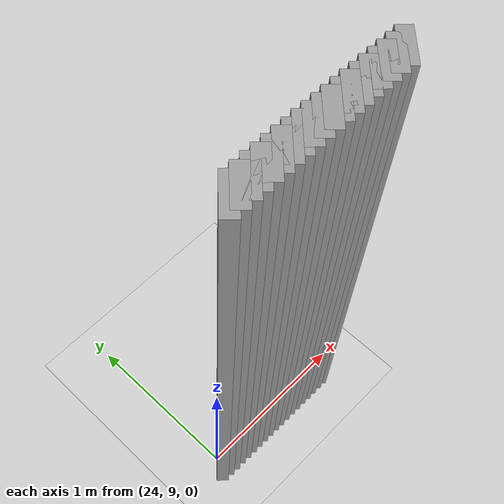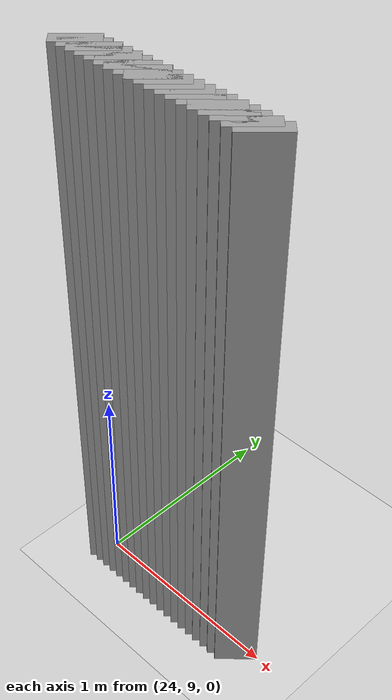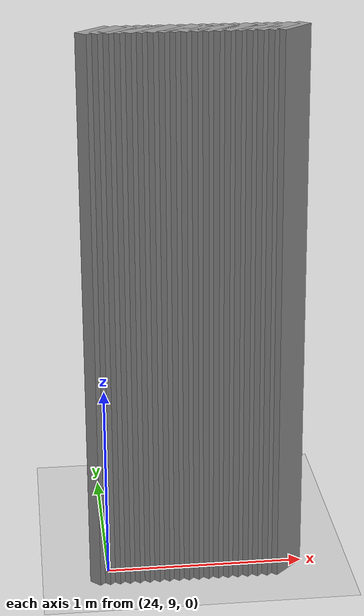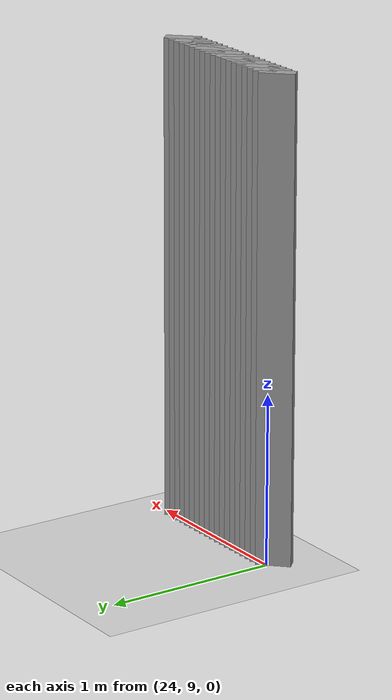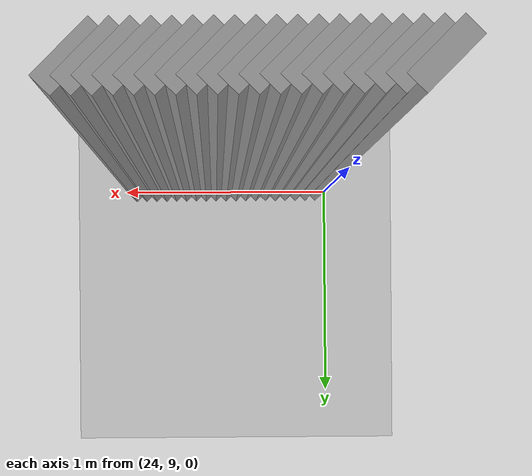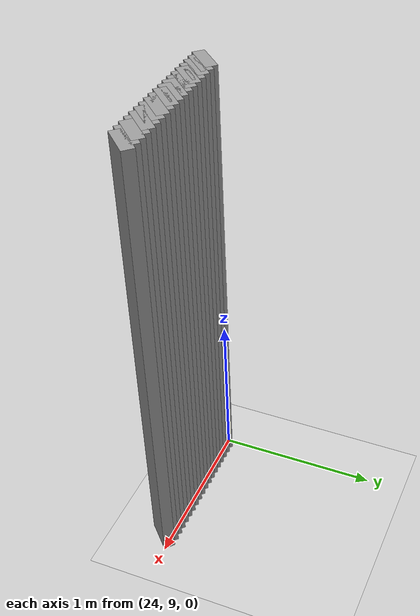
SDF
<sdf version="1.5">
 <world name="default">
  <include><uri>model://ground_plane</uri></include>
  <include><uri>model://sun</uri></include>
  <model name="grey_wall_3564">
   <static>1</static>
   <link name="link">
    <pose>24.0 8.95  1.4 0 0 -0.785398163397</pose>
    <collision name="collision"><geometry><box><size>0.0707106781187 .2  2.8</size></box></geometry></collision>
    <visual name="visual">
     <cast_shadows>0</cast_shadows>
     <geometry><box><size>0.0707106781187 .2  2.8</size></box></geometry>
     <material>
      <script>
       <uri>model://grey_wall/materials/scripts</uri>
       <uri>model://grey_wall/materials/textures</uri>
       <name>vrc/grey_wall</name>
      </script>
     </material>
    </visual>
   </link>
  </model>
  <model name="grey_wall_3565">
   <static>1</static>
   <link name="link">
    <pose>24.05 8.95  1.4 0 0 -0.785398163397</pose>
    <collision name="collision"><geometry><box><size>0.0707106781187 .2  2.8</size></box></geometry></collision>
    <visual name="visual">
     <cast_shadows>0</cast_shadows>
     <geometry><box><size>0.0707106781187 .2  2.8</size></box></geometry>
     <material>
      <script>
       <uri>model://grey_wall/materials/scripts</uri>
       <uri>model://grey_wall/materials/textures</uri>
       <name>vrc/grey_wall</name>
      </script>
     </material>
    </visual>
   </link>
  </model>
  <model name="grey_wall_3566">
   <static>1</static>
   <link name="link">
    <pose>24.1 8.95  1.4 0 0 -0.785398163397</pose>
    <collision name="collision"><geometry><box><size>0.0707106781187 .2  2.8</size></box></geometry></collision>
    <visual name="visual">
     <cast_shadows>0</cast_shadows>
     <geometry><box><size>0.0707106781187 .2  2.8</size></box></geometry>
     <material>
      <script>
       <uri>model://grey_wall/materials/scripts</uri>
       <uri>model://grey_wall/materials/textures</uri>
       <name>vrc/grey_wall</name>
      </script>
     </material>
    </visual>
   </link>
  </model>
  <model name="grey_wall_3567">
   <static>1</static>
   <link name="link">
    <pose>24.15 8.95  1.4 0 0 -0.785398163397</pose>
    <collision name="collision"><geometry><box><size>0.0707106781187 .2  2.8</size></box></geometry></collision>
    <visual name="visual">
     <cast_shadows>0</cast_shadows>
     <geometry><box><size>0.0707106781187 .2  2.8</size></box></geometry>
     <material>
      <script>
       <uri>model://grey_wall/materials/scripts</uri>
       <uri>model://grey_wall/materials/textures</uri>
       <name>vrc/grey_wall</name>
      </script>
     </material>
    </visual>
   </link>
  </model>
  <model name="grey_wall_3568">
   <static>1</static>
   <link name="link">
    <pose>24.2 8.95  1.4 0 0 -0.785398163397</pose>
    <collision name="collision"><geometry><box><size>0.0707106781187 .2  2.8</size></box></geometry></collision>
    <visual name="visual">
     <cast_shadows>0</cast_shadows>
     <geometry><box><size>0.0707106781187 .2  2.8</size></box></geometry>
     <material>
      <script>
       <uri>model://grey_wall/materials/scripts</uri>
       <uri>model://grey_wall/materials/textures</uri>
       <name>vrc/grey_wall</name>
      </script>
     </material>
    </visual>
   </link>
  </model>
  <model name="grey_wall_3569">
   <static>1</static>
   <link name="link">
    <pose>24.25 8.95  1.4 0 0 -0.785398163397</pose>
    <collision name="collision"><geometry><box><size>0.0707106781187 .2  2.8</size></box></geometry></collision>
    <visual name="visual">
     <cast_shadows>0</cast_shadows>
     <geometry><box><size>0.0707106781187 .2  2.8</size></box></geometry>
     <material>
      <script>
       <uri>model://grey_wall/materials/scripts</uri>
       <uri>model://grey_wall/materials/textures</uri>
       <name>vrc/grey_wall</name>
      </script>
     </material>
    </visual>
   </link>
  </model>
  <model name="grey_wall_3570">
   <static>1</static>
   <link name="link">
    <pose>24.3 8.95  1.4 0 0 -0.785398163397</pose>
    <collision name="collision"><geometry><box><size>0.0707106781187 .2  2.8</size></box></geometry></collision>
    <visual name="visual">
     <cast_shadows>0</cast_shadows>
     <geometry><box><size>0.0707106781187 .2  2.8</size></box></geometry>
     <material>
      <script>
       <uri>model://grey_wall/materials/scripts</uri>
       <uri>model://grey_wall/materials/textures</uri>
       <name>vrc/grey_wall</name>
      </script>
     </material>
    </visual>
   </link>
  </model>
  <model name="grey_wall_3571">
   <static>1</static>
   <link name="link">
    <pose>24.35 8.95  1.4 0 0 -0.785398163397</pose>
    <collision name="collision"><geometry><box><size>0.0707106781187 .2  2.8</size></box></geometry></collision>
    <visual name="visual">
     <cast_shadows>0</cast_shadows>
     <geometry><box><size>0.0707106781187 .2  2.8</size></box></geometry>
     <material>
      <script>
       <uri>model://grey_wall/materials/scripts</uri>
       <uri>model://grey_wall/materials/textures</uri>
       <name>vrc/grey_wall</name>
      </script>
     </material>
    </visual>
   </link>
  </model>
  <model name="grey_wall_3572">
   <static>1</static>
   <link name="link">
    <pose>24.4 8.95  1.4 0 0 -0.785398163397</pose>
    <collision name="collision"><geometry><box><size>0.0707106781187 .2  2.8</size></box></geometry></collision>
    <visual name="visual">
     <cast_shadows>0</cast_shadows>
     <geometry><box><size>0.0707106781187 .2  2.8</size></box></geometry>
     <material>
      <script>
       <uri>model://grey_wall/materials/scripts</uri>
       <uri>model://grey_wall/materials/textures</uri>
       <name>vrc/grey_wall</name>
      </script>
     </material>
    </visual>
   </link>
  </model>
  <model name="grey_wall_3573">
   <static>1</static>
   <link name="link">
    <pose>24.45 8.95  1.4 0 0 -0.785398163397</pose>
    <collision name="collision"><geometry><box><size>0.0707106781187 .2  2.8</size></box></geometry></collision>
    <visual name="visual">
     <cast_shadows>0</cast_shadows>
     <geometry><box><size>0.0707106781187 .2  2.8</size></box></geometry>
     <material>
      <script>
       <uri>model://grey_wall/materials/scripts</uri>
       <uri>model://grey_wall/materials/textures</uri>
       <name>vrc/grey_wall</name>
      </script>
     </material>
    </visual>
   </link>
  </model>
  <model name="grey_wall_3574">
   <static>1</static>
   <link name="link">
    <pose>24.5 8.95  1.4 0 0 -0.785398163397</pose>
    <collision name="collision"><geometry><box><size>0.0707106781187 .2  2.8</size></box></geometry></collision>
    <visual name="visual">
     <cast_shadows>0</cast_shadows>
     <geometry><box><size>0.0707106781187 .2  2.8</size></box></geometry>
     <material>
      <script>
       <uri>model://grey_wall/materials/scripts</uri>
       <uri>model://grey_wall/materials/textures</uri>
       <name>vrc/grey_wall</name>
      </script>
     </material>
    </visual>
   </link>
  </model>
  <model name="grey_wall_3575">
   <static>1</static>
   <link name="link">
    <pose>24.55 8.95  1.4 0 0 -0.785398163397</pose>
    <collision name="collision"><geometry><box><size>0.0707106781187 .2  2.8</size></box></geometry></collision>
    <visual name="visual">
     <cast_shadows>0</cast_shadows>
     <geometry><box><size>0.0707106781187 .2  2.8</size></box></geometry>
     <material>
      <script>
       <uri>model://grey_wall/materials/scripts</uri>
       <uri>model://grey_wall/materials/textures</uri>
       <name>vrc/grey_wall</name>
      </script>
     </material>
    </visual>
   </link>
  </model>
  <model name="grey_wall_3576">
   <static>1</static>
   <link name="link">
    <pose>24.6 8.95  1.4 0 0 -0.785398163397</pose>
    <collision name="collision"><geometry><box><size>0.0707106781187 .2  2.8</size></box></geometry></collision>
    <visual name="visual">
     <cast_shadows>0</cast_shadows>
     <geometry><box><size>0.0707106781187 .2  2.8</size></box></geometry>
     <material>
      <script>
       <uri>model://grey_wall/materials/scripts</uri>
       <uri>model://grey_wall/materials/textures</uri>
       <name>vrc/grey_wall</name>
      </script>
     </material>
    </visual>
   </link>
  </model>
  <model name="grey_wall_3577">
   <static>1</static>
   <link name="link">
    <pose>24.65 8.95  1.4 0 0 -0.785398163397</pose>
    <collision name="collision"><geometry><box><size>0.0707106781187 .2  2.8</size></box></geometry></collision>
    <visual name="visual">
     <cast_shadows>0</cast_shadows>
     <geometry><box><size>0.0707106781187 .2  2.8</size></box></geometry>
     <material>
      <script>
       <uri>model://grey_wall/materials/scripts</uri>
       <uri>model://grey_wall/materials/textures</uri>
       <name>vrc/grey_wall</name>
      </script>
     </material>
    </visual>
   </link>
  </model>
  <model name="grey_wall_3578">
   <static>1</static>
   <link name="link">
    <pose>24.7 8.95  1.4 0 0 -0.785398163397</pose>
    <collision name="collision"><geometry><box><size>0.0707106781187 .2  2.8</size></box></geometry></collision>
    <visual name="visual">
     <cast_shadows>0</cast_shadows>
     <geometry><box><size>0.0707106781187 .2  2.8</size></box></geometry>
     <material>
      <script>
       <uri>model://grey_wall/materials/scripts</uri>
       <uri>model://grey_wall/materials/textures</uri>
       <name>vrc/grey_wall</name>
      </script>
     </material>
    </visual>
   </link>
  </model>
  <model name="grey_wall_3579">
   <static>1</static>
   <link name="link">
    <pose>24.75 8.95  1.4 0 0 -0.785398163397</pose>
    <collision name="collision"><geometry><box><size>0.0707106781187 .2  2.8</size></box></geometry></collision>
    <visual name="visual">
     <cast_shadows>0</cast_shadows>
     <geometry><box><size>0.0707106781187 .2  2.8</size></box></geometry>
     <material>
      <script>
       <uri>model://grey_wall/materials/scripts</uri>
       <uri>model://grey_wall/materials/textures</uri>
       <name>vrc/grey_wall</name>
      </script>
     </material>
    </visual>
   </link>
  </model>
  <model name="grey_wall_3580">
   <static>1</static>
   <link name="link">
    <pose>24.8 8.95  1.4 0 0 -0.785398163397</pose>
    <collision name="collision"><geometry><box><size>0.0707106781187 .2  2.8</size></box></geometry></collision>
    <visual name="visual">
     <cast_shadows>0</cast_shadows>
     <geometry><box><size>0.0707106781187 .2  2.8</size></box></geometry>
     <material>
      <script>
       <uri>model://grey_wall/materials/scripts</uri>
       <uri>model://grey_wall/materials/textures</uri>
       <name>vrc/grey_wall</name>
      </script>
     </material>
    </visual>
   </link>
  </model>
  <model name="grey_wall_3581">
   <static>1</static>
   <link name="link">
    <pose>24.85 8.95  1.4 0 0 -0.785398163397</pose>
    <collision name="collision"><geometry><box><size>0.0707106781187 .2  2.8</size></box></geometry></collision>
    <visual name="visual">
     <cast_shadows>0</cast_shadows>
     <geometry><box><size>0.0707106781187 .2  2.8</size></box></geometry>
     <material>
      <script>
       <uri>model://grey_wall/materials/scripts</uri>
       <uri>model://grey_wall/materials/textures</uri>
       <name>vrc/grey_wall</name>
      </script>
     </material>
    </visual>
   </link>
  </model>
  <model name="grey_wall_3582">
   <static>1</static>
   <link name="link">
    <pose>24.9 8.95  1.4 0 0 -0.785398163397</pose>
    <collision name="collision"><geometry><box><size>0.0707106781187 .2  2.8</size></box></geometry></collision>
    <visual name="visual">
     <cast_shadows>0</cast_shadows>
     <geometry><box><size>0.0707106781187 .2  2.8</size></box></geometry>
     <material>
      <script>
       <uri>model://grey_wall/materials/scripts</uri>
       <uri>model://grey_wall/materials/textures</uri>
       <name>vrc/grey_wall</name>
      </script>
     </material>
    </visual>
   </link>
  </model>
 </world>
</sdf>
